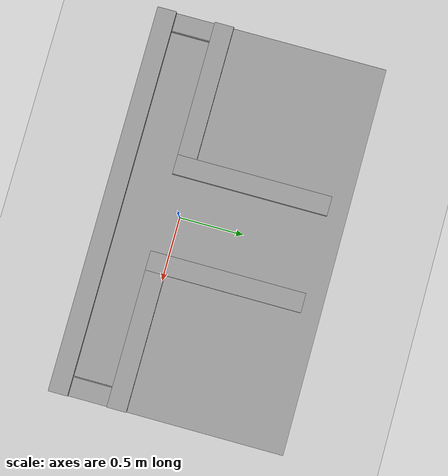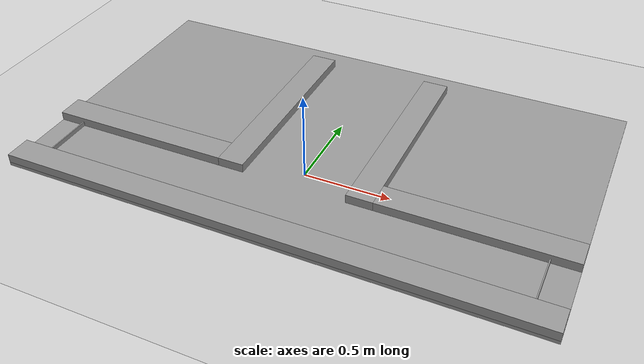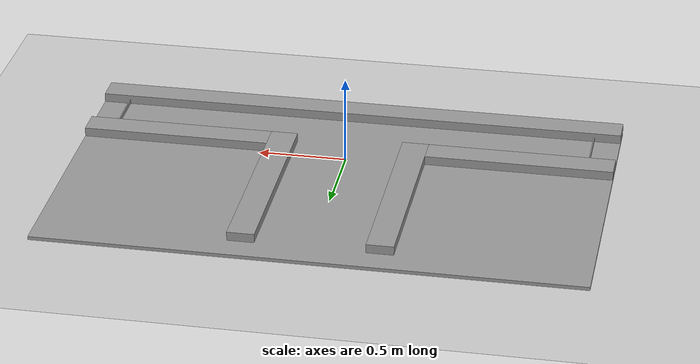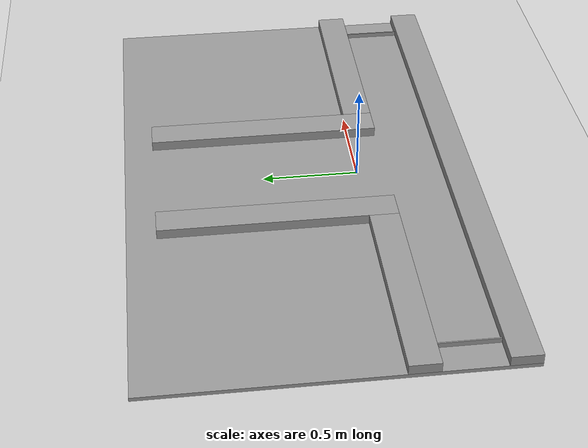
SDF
<sdf version="1.7">
 <world name="default">
  <light name="sun" type="directional">
   <pose>0 0 10 0 -0 0</pose>
   <diffuse>0.8 0.8 0.8 1</diffuse>
   <specular>0.2 0.2 0.2 1</specular>
   <attenuation>
    <range>1000</range>
    <constant>0.9</constant>
    <linear>0.01</linear>
    <quadratic>0.001</quadratic>
   </attenuation>
   <direction>-0.5 0.1 -0.9</direction>
   <spot><inner_angle>0</inner_angle><outer_angle>0</outer_angle><falloff>0</falloff></spot>
  </light>
  <model name="ground_plane">
   <static>1</static>
   <link name="link">
    <collision name="collision">
     <geometry><plane><normal>0 0 1</normal><size>100 100</size></plane></geometry>
     <surface>
      <contact><collide_bitmask>65535</collide_bitmask></contact>
      <friction><ode><mu>0.4</mu><mu2>0.4</mu2></ode></friction>
     </surface>
    </collision>
    <visual name="visual">
     <cast_shadows>0</cast_shadows>
     <geometry><plane><normal>0 0 1</normal><size>100 100</size></plane></geometry>
     <material>
      <script><uri>file://media/materials/scripts/gazebo.material</uri><name>Gazebo/Grey</name></script>
     </material>
    </visual>
   </link>
  </model>
  <gravity>0 0 -9.8</gravity>
  <magnetic_field>6e-06 2.3e-05 -4.2e-05</magnetic_field>
  <atmosphere type="adiabatic"/>
  <physics type="ode">
   <max_step_size>0.001</max_step_size>
   <real_time_factor>1</real_time_factor>
   <real_time_update_rate>1000</real_time_update_rate>
  </physics>
  <scene><ambient>0.4 0.4 0.4 1</ambient><background>0.7 0.7 0.7 1</background><shadows>1</shadows></scene>
  <spherical_coordinates>
   <surface_model>EARTH_WGS84</surface_model>
   <latitude_deg>0</latitude_deg>
   <longitude_deg>0</longitude_deg>
   <elevation>0</elevation>
   <heading_deg>0</heading_deg>
  </spherical_coordinates>
  <model name="nosignal_ps1.world">
   <link name="link_0">
    <inertial>
     <mass>1</mass>
     <inertia>
      <ixx>0.166667</ixx>
      <ixy>0</ixy>
      <ixz>0</ixz>
      <iyy>0.166667</iyy>
      <iyz>0</iyz>
      <izz>0.166667</izz>
     </inertia>
    </inertial>
    <pose>0 0.314325 -0.0278 0 -0 0</pose>
    <visual name="visual">
     <geometry><box><size>3.048 1.8288 0.02</size></box></geometry>
     <material>
      <lighting>1</lighting>
      <script><uri>file://media/materials/scripts/gazebo.material</uri><name>Gazebo/Grey</name></script>
      <shader type="pixel"><normal_map>__default__</normal_map></shader>
      <ambient>0.3 0.3 0.3 1</ambient>
      <diffuse>0.7 0.7 0.7 1</diffuse>
      <specular>0.01 0.01 0.01 1</specular>
      <emissive>0 0 0 1</emissive>
     </material>
    </visual>
    <collision name="collision">
     <geometry><box><size>3.048 1.8288 0.02</size></box></geometry>
     <surface>
      <friction>
       <ode><mu>1</mu><mu2>1</mu2><fdir1>0 0 0</fdir1><slip1>0</slip1><slip2>0</slip2></ode>
       <torsional>
        <coefficient>1</coefficient>
        <patch_radius>0</patch_radius>
        <surface_radius>0</surface_radius>
        <use_patch_radius>1</use_patch_radius>
        <ode><slip>0</slip></ode>
       </torsional>
      </friction>
      <bounce><restitution_coefficient>0</restitution_coefficient><threshold>1e+06</threshold></bounce>
      <contact>
       <collide_without_contact>0</collide_without_contact>
       <collide_without_contact_bitmask>1</collide_without_contact_bitmask>
       <collide_bitmask>1</collide_bitmask>
       <ode>
        <soft_cfm>0</soft_cfm>
        <soft_erp>0.2</soft_erp>
        <kp>1e+13</kp>
        <kd>1</kd>
        <max_vel>0.01</max_vel>
        <min_depth>0</min_depth>
       </ode>
       <bullet>
        <split_impulse>1</split_impulse>
        <split_impulse_penetration_threshold>-0.01</split_impulse_penetration_threshold>
        <soft_cfm>0</soft_cfm>
        <soft_erp>0.2</soft_erp>
        <kp>1e+13</kp>
        <kd>1</kd>
       </bullet>
      </contact>
     </surface>
    </collision>
   </link>
   <link name="link_1">
    <inertial>
     <mass>1</mass>
     <inertia>
      <ixx>0.166667</ixx>
      <ixy>0</ixy>
      <ixz>0</ixz>
      <iyy>0.166667</iyy>
      <iyz>0</iyz>
      <izz>0.166667</izz>
     </inertia>
    </inertial>
    <pose>0.381 0.466725 0.0076 0 -0 0</pose>
    <visual name="visual">
     <geometry><box><size>0.1524 1.2192 0.0508</size></box></geometry>
     <material>
      <lighting>1</lighting>
      <script><uri>file://media/materials/scripts/gazebo.material</uri><name>Gazebo/Grey</name></script>
      <shader type="pixel"><normal_map>__default__</normal_map></shader>
      <ambient>0.3 0.3 0.3 1</ambient>
      <diffuse>0.7 0.7 0.7 1</diffuse>
      <specular>0.01 0.01 0.01 1</specular>
      <emissive>0 0 0 1</emissive>
     </material>
    </visual>
    <collision name="collision">
     <geometry><box><size>0.1524 1.2192 0.0708</size></box></geometry>
     <surface>
      <friction>
       <ode><mu>1</mu><mu2>1</mu2><fdir1>0 0 0</fdir1><slip1>0</slip1><slip2>0</slip2></ode>
       <torsional>
        <coefficient>1</coefficient>
        <patch_radius>0</patch_radius>
        <surface_radius>0</surface_radius>
        <use_patch_radius>1</use_patch_radius>
        <ode><slip>0</slip></ode>
       </torsional>
      </friction>
      <bounce><restitution_coefficient>0</restitution_coefficient><threshold>1e+06</threshold></bounce>
      <contact>
       <collide_without_contact>0</collide_without_contact>
       <collide_without_contact_bitmask>1</collide_without_contact_bitmask>
       <collide_bitmask>1</collide_bitmask>
       <ode>
        <soft_cfm>0</soft_cfm>
        <soft_erp>0.2</soft_erp>
        <kp>1e+13</kp>
        <kd>1</kd>
        <max_vel>0.01</max_vel>
        <min_depth>0</min_depth>
       </ode>
       <bullet>
        <split_impulse>1</split_impulse>
        <split_impulse_penetration_threshold>-0.01</split_impulse_penetration_threshold>
        <soft_cfm>0</soft_cfm>
        <soft_erp>0.2</soft_erp>
        <kp>1e+13</kp>
        <kd>1</kd>
       </bullet>
      </contact>
     </surface>
    </collision>
   </link>
   <link name="link_2">
    <inertial>
     <mass>1</mass>
     <inertia>
      <ixx>0.166667</ixx>
      <ixy>0</ixy>
      <ixz>0</ixz>
      <iyy>0.166667</iyy>
      <iyz>0</iyz>
      <izz>0.166667</izz>
     </inertia>
    </inertial>
    <pose>-0.381 0.466725 0.0076 0 -0 0</pose>
    <visual name="visual">
     <geometry><box><size>0.1524 1.2192 0.0508</size></box></geometry>
     <material>
      <lighting>1</lighting>
      <script><uri>file://media/materials/scripts/gazebo.material</uri><name>Gazebo/Grey</name></script>
      <shader type="pixel"><normal_map>__default__</normal_map></shader>
      <ambient>0.3 0.3 0.3 1</ambient>
      <diffuse>0.7 0.7 0.7 1</diffuse>
      <specular>0.01 0.01 0.01 1</specular>
      <emissive>0 0 0 1</emissive>
     </material>
    </visual>
    <collision name="collision">
     <geometry><box><size>0.1524 1.2192 0.0508</size></box></geometry>
     <surface>
      <friction>
       <ode><mu>1</mu><mu2>1</mu2><fdir1>0 0 0</fdir1><slip1>0</slip1><slip2>0</slip2></ode>
       <torsional>
        <coefficient>1</coefficient>
        <patch_radius>0</patch_radius>
        <surface_radius>0</surface_radius>
        <use_patch_radius>1</use_patch_radius>
        <ode><slip>0</slip></ode>
       </torsional>
      </friction>
      <bounce><restitution_coefficient>0</restitution_coefficient><threshold>1e+06</threshold></bounce>
      <contact>
       <collide_without_contact>0</collide_without_contact>
       <collide_without_contact_bitmask>1</collide_without_contact_bitmask>
       <collide_bitmask>1</collide_bitmask>
       <ode>
        <soft_cfm>0</soft_cfm>
        <soft_erp>0.2</soft_erp>
        <kp>1e+13</kp>
        <kd>1</kd>
        <max_vel>0.01</max_vel>
        <min_depth>0</min_depth>
       </ode>
       <bullet>
        <split_impulse>1</split_impulse>
        <split_impulse_penetration_threshold>-0.01</split_impulse_penetration_threshold>
        <soft_cfm>0</soft_cfm>
        <soft_erp>0.2</soft_erp>
        <kp>1e+13</kp>
        <kd>1</kd>
       </bullet>
      </contact>
     </surface>
    </collision>
   </link>
   <link name="link_3">
    <inertial>
     <mass>1</mass>
     <inertia>
      <ixx>0.166667</ixx>
      <ixy>0</ixy>
      <ixz>0</ixz>
      <iyy>0.166667</iyy>
      <iyz>0</iyz>
      <izz>0.166667</izz>
     </inertia>
    </inertial>
    <pose>0.9906 -0.066675 0.0076 0 -0 0</pose>
    <visual name="visual">
     <geometry><box><size>1.0668 0.1524 0.0508</size></box></geometry>
     <material>
      <lighting>1</lighting>
      <script><uri>file://media/materials/scripts/gazebo.material</uri><name>Gazebo/Grey</name></script>
      <shader type="pixel"><normal_map>__default__</normal_map></shader>
      <ambient>0.3 0.3 0.3 1</ambient>
      <diffuse>0.7 0.7 0.7 1</diffuse>
      <specular>0.01 0.01 0.01 1</specular>
      <emissive>0 0 0 1</emissive>
     </material>
    </visual>
    <collision name="collision">
     <geometry><box><size>1.0668 0.1524 0.0508</size></box></geometry>
     <surface>
      <friction>
       <ode><mu>1</mu><mu2>1</mu2><fdir1>0 0 0</fdir1><slip1>0</slip1><slip2>0</slip2></ode>
       <torsional>
        <coefficient>1</coefficient>
        <patch_radius>0</patch_radius>
        <surface_radius>0</surface_radius>
        <use_patch_radius>1</use_patch_radius>
        <ode><slip>0</slip></ode>
       </torsional>
      </friction>
      <bounce><restitution_coefficient>0</restitution_coefficient><threshold>1e+06</threshold></bounce>
      <contact>
       <collide_without_contact>0</collide_without_contact>
       <collide_without_contact_bitmask>1</collide_without_contact_bitmask>
       <collide_bitmask>1</collide_bitmask>
       <ode>
        <soft_cfm>0</soft_cfm>
        <soft_erp>0.2</soft_erp>
        <kp>1e+13</kp>
        <kd>1</kd>
        <max_vel>0.01</max_vel>
        <min_depth>0</min_depth>
       </ode>
       <bullet>
        <split_impulse>1</split_impulse>
        <split_impulse_penetration_threshold>-0.01</split_impulse_penetration_threshold>
        <soft_cfm>0</soft_cfm>
        <soft_erp>0.2</soft_erp>
        <kp>1e+13</kp>
        <kd>1</kd>
       </bullet>
      </contact>
     </surface>
    </collision>
   </link>
   <link name="link_4">
    <inertial>
     <mass>1</mass>
     <inertia>
      <ixx>0.166667</ixx>
      <ixy>0</ixy>
      <ixz>0</ixz>
      <iyy>0.166667</iyy>
      <iyz>0</iyz>
      <izz>0.166667</izz>
     </inertia>
    </inertial>
    <pose>-0.9906 -0.066675 0.0076 0 -0 0</pose>
    <visual name="visual">
     <geometry><box><size>1.0668 0.1524 0.0508</size></box></geometry>
     <material>
      <lighting>1</lighting>
      <script><uri>file://media/materials/scripts/gazebo.material</uri><name>Gazebo/Grey</name></script>
      <shader type="pixel"><normal_map>__default__</normal_map></shader>
      <ambient>0.3 0.3 0.3 1</ambient>
      <diffuse>0.7 0.7 0.7 1</diffuse>
      <specular>0.01 0.01 0.01 1</specular>
      <emissive>0 0 0 1</emissive>
     </material>
    </visual>
    <collision name="collision">
     <geometry><box><size>1.0668 0.1524 0.0508</size></box></geometry>
     <surface>
      <friction>
       <ode><mu>1</mu><mu2>1</mu2><fdir1>0 0 0</fdir1><slip1>0</slip1><slip2>0</slip2></ode>
       <torsional>
        <coefficient>1</coefficient>
        <patch_radius>0</patch_radius>
        <surface_radius>0</surface_radius>
        <use_patch_radius>1</use_patch_radius>
        <ode><slip>0</slip></ode>
       </torsional>
      </friction>
      <bounce><restitution_coefficient>0</restitution_coefficient><threshold>1e+06</threshold></bounce>
      <contact>
       <collide_without_contact>0</collide_without_contact>
       <collide_without_contact_bitmask>1</collide_without_contact_bitmask>
       <collide_bitmask>1</collide_bitmask>
       <ode>
        <soft_cfm>0</soft_cfm>
        <soft_erp>0.2</soft_erp>
        <kp>1e+13</kp>
        <kd>1</kd>
        <max_vel>0.01</max_vel>
        <min_depth>0</min_depth>
       </ode>
       <bullet>
        <split_impulse>1</split_impulse>
        <split_impulse_penetration_threshold>-0.01</split_impulse_penetration_threshold>
        <soft_cfm>0</soft_cfm>
        <soft_erp>0.2</soft_erp>
        <kp>1e+13</kp>
        <kd>1</kd>
       </bullet>
      </contact>
     </surface>
    </collision>
   </link>
   <link name="link_5">
    <inertial>
     <mass>1</mass>
     <inertia>
      <ixx>0.166667</ixx>
      <ixy>0</ixy>
      <ixz>0</ixz>
      <iyy>0.166667</iyy>
      <iyz>0</iyz>
      <izz>0.166667</izz>
     </inertia>
    </inertial>
    <pose>0 -0.523875 0.0076 0 -0 0</pose>
    <visual name="visual">
     <geometry><box><size>3.048 0.1524 0.0508</size></box></geometry>
     <material>
      <lighting>1</lighting>
      <script><uri>file://media/materials/scripts/gazebo.material</uri><name>Gazebo/Grey</name></script>
      <shader type="pixel"><normal_map>__default__</normal_map></shader>
      <ambient>0.3 0.3 0.3 1</ambient>
      <diffuse>0.7 0.7 0.7 1</diffuse>
      <specular>0.01 0.01 0.01 1</specular>
      <emissive>0 0 0 1</emissive>
     </material>
    </visual>
    <collision name="collision">
     <geometry><box><size>3.048 0.1524 0.0508</size></box></geometry>
     <surface>
      <friction>
       <ode><mu>1</mu><mu2>1</mu2><fdir1>0 0 0</fdir1><slip1>0</slip1><slip2>0</slip2></ode>
       <torsional>
        <coefficient>1</coefficient>
        <patch_radius>0</patch_radius>
        <surface_radius>0</surface_radius>
        <use_patch_radius>1</use_patch_radius>
        <ode><slip>0</slip></ode>
       </torsional>
      </friction>
      <bounce><restitution_coefficient>0</restitution_coefficient><threshold>1e+06</threshold></bounce>
      <contact>
       <collide_without_contact>0</collide_without_contact>
       <collide_without_contact_bitmask>1</collide_without_contact_bitmask>
       <collide_bitmask>1</collide_bitmask>
       <ode>
        <soft_cfm>0</soft_cfm>
        <soft_erp>0.2</soft_erp>
        <kp>1e+13</kp>
        <kd>1</kd>
        <max_vel>0.01</max_vel>
        <min_depth>0</min_depth>
       </ode>
       <bullet>
        <split_impulse>1</split_impulse>
        <split_impulse_penetration_threshold>-0.01</split_impulse_penetration_threshold>
        <soft_cfm>0</soft_cfm>
        <soft_erp>0.2</soft_erp>
        <kp>1e+13</kp>
        <kd>1</kd>
       </bullet>
      </contact>
     </surface>
    </collision>
   </link>
   <link name="link_6">
    <inertial>
     <mass>1</mass>
     <inertia>
      <ixx>0.166667</ixx>
      <ixy>0</ixy>
      <ixz>0</ixz>
      <iyy>0.166667</iyy>
      <iyz>0</iyz>
      <izz>0.166667</izz>
     </inertia>
    </inertial>
    <pose>1.3716 -0.295275 -0.0051 0 -0 0</pose>
    <visual name="visual">
     <geometry><box><size>0.00635 0.3048 0.0254</size></box></geometry>
     <material>
      <lighting>1</lighting>
      <script><uri>file://media/materials/scripts/gazebo.material</uri><name>Gazebo/Grey</name></script>
      <shader type="pixel"><normal_map>__default__</normal_map></shader>
      <ambient>0.3 0.3 0.3 1</ambient>
      <diffuse>0.7 0.7 0.7 1</diffuse>
      <specular>0.01 0.01 0.01 1</specular>
      <emissive>0 0 0 1</emissive>
     </material>
    </visual>
    <collision name="collision">
     <geometry><box><size>0.00635 0.3048 0.0254</size></box></geometry>
     <surface>
      <friction>
       <ode><mu>1</mu><mu2>1</mu2><fdir1>0 0 0</fdir1><slip1>0</slip1><slip2>0</slip2></ode>
       <torsional>
        <coefficient>1</coefficient>
        <patch_radius>0</patch_radius>
        <surface_radius>0</surface_radius>
        <use_patch_radius>1</use_patch_radius>
        <ode><slip>0</slip></ode>
       </torsional>
      </friction>
      <bounce><restitution_coefficient>0</restitution_coefficient><threshold>1e+06</threshold></bounce>
      <contact>
       <collide_without_contact>0</collide_without_contact>
       <collide_without_contact_bitmask>1</collide_without_contact_bitmask>
       <collide_bitmask>1</collide_bitmask>
       <ode>
        <soft_cfm>0</soft_cfm>
        <soft_erp>0.2</soft_erp>
        <kp>1e+13</kp>
        <kd>1</kd>
        <max_vel>0.01</max_vel>
        <min_depth>0</min_depth>
       </ode>
       <bullet>
        <split_impulse>1</split_impulse>
        <split_impulse_penetration_threshold>-0.01</split_impulse_penetration_threshold>
        <soft_cfm>0</soft_cfm>
        <soft_erp>0.2</soft_erp>
        <kp>1e+13</kp>
        <kd>1</kd>
       </bullet>
      </contact>
     </surface>
    </collision>
   </link>
   <link name="link_7">
    <inertial>
     <mass>1</mass>
     <inertia>
      <ixx>0.166667</ixx>
      <ixy>0</ixy>
      <ixz>0</ixz>
      <iyy>0.166667</iyy>
      <iyz>0</iyz>
      <izz>0.166667</izz>
     </inertia>
    </inertial>
    <pose>-1.3716 -0.295275 -0.0051 0 -0 0</pose>
    <visual name="visual">
     <geometry><box><size>0.00635 0.3048 0.0254</size></box></geometry>
     <material>
      <lighting>1</lighting>
      <script><uri>file://media/materials/scripts/gazebo.material</uri><name>Gazebo/Grey</name></script>
      <shader type="pixel"><normal_map>__default__</normal_map></shader>
      <ambient>0.3 0.3 0.3 1</ambient>
      <diffuse>0.7 0.7 0.7 1</diffuse>
      <specular>0.01 0.01 0.01 1</specular>
      <emissive>0 0 0 1</emissive>
     </material>
    </visual>
    <collision name="collision">
     <geometry><box><size>0.00635 0.3048 0.0254</size></box></geometry>
     <surface>
      <friction>
       <ode><mu>1</mu><mu2>1</mu2><fdir1>0 0 0</fdir1><slip1>0</slip1><slip2>0</slip2></ode>
       <torsional>
        <coefficient>1</coefficient>
        <patch_radius>0</patch_radius>
        <surface_radius>0</surface_radius>
        <use_patch_radius>1</use_patch_radius>
        <ode><slip>0</slip></ode>
       </torsional>
      </friction>
      <bounce><restitution_coefficient>0</restitution_coefficient><threshold>1e+06</threshold></bounce>
      <contact>
       <collide_without_contact>0</collide_without_contact>
       <collide_without_contact_bitmask>1</collide_without_contact_bitmask>
       <collide_bitmask>1</collide_bitmask>
       <ode>
        <soft_cfm>0</soft_cfm>
        <soft_erp>0.2</soft_erp>
        <kp>1e+13</kp>
        <kd>1</kd>
        <max_vel>0.01</max_vel>
        <min_depth>0</min_depth>
       </ode>
       <bullet>
        <split_impulse>1</split_impulse>
        <split_impulse_penetration_threshold>-0.01</split_impulse_penetration_threshold>
        <soft_cfm>0</soft_cfm>
        <soft_erp>0.2</soft_erp>
        <kp>1e+13</kp>
        <kd>1</kd>
       </bullet>
      </contact>
     </surface>
    </collision>
   </link>
   <joint name="link_0_JOINT_1" type="fixed">
    <parent>link_0</parent>
    <child>link_1</child>
    <physics>
     <ode><limit><cfm>0</cfm><erp>0.2</erp></limit><suspension><cfm>0</cfm><erp>0.2</erp></suspension></ode>
    </physics>
   </joint>
   <joint name="link_0_JOINT_2" type="fixed">
    <parent>link_0</parent>
    <child>link_3</child>
    <physics>
     <ode><limit><cfm>0</cfm><erp>0.2</erp></limit><suspension><cfm>0</cfm><erp>0.2</erp></suspension></ode>
    </physics>
   </joint>
   <joint name="link_0_JOINT_3" type="fixed">
    <parent>link_0</parent>
    <child>link_4</child>
    <physics>
     <ode><limit><cfm>0</cfm><erp>0.2</erp></limit><suspension><cfm>0</cfm><erp>0.2</erp></suspension></ode>
    </physics>
   </joint>
   <joint name="link_0_JOINT_4" type="fixed">
    <parent>link_0</parent>
    <child>link_5</child>
    <physics>
     <ode><limit><cfm>0</cfm><erp>0.2</erp></limit><suspension><cfm>0</cfm><erp>0.2</erp></suspension></ode>
    </physics>
   </joint>
   <joint name="link_0_JOINT_5" type="fixed">
    <parent>link_0</parent>
    <child>link_6</child>
    <physics>
     <ode><limit><cfm>0</cfm><erp>0.2</erp></limit><suspension><cfm>0</cfm><erp>0.2</erp></suspension></ode>
    </physics>
   </joint>
   <joint name="link_0_JOINT_6" type="fixed">
    <parent>link_0</parent>
    <child>link_7</child>
    <physics>
     <ode><limit><cfm>0</cfm><erp>0.2</erp></limit><suspension><cfm>0</cfm><erp>0.2</erp></suspension></ode>
    </physics>
   </joint>
   <joint name="link_0_JOINT_7" type="fixed">
    <parent>link_0</parent>
    <child>link_2</child>
    <physics>
     <ode><limit><cfm>0</cfm><erp>0.2</erp></limit><suspension><cfm>0</cfm><erp>0.2</erp></suspension></ode>
    </physics>
   </joint>
   <static>0</static>
   <pose>4.6e-05 -0.000782 0.037795 -0 -4e-06 0.000162</pose>
  </model>
 </world>
</sdf>
